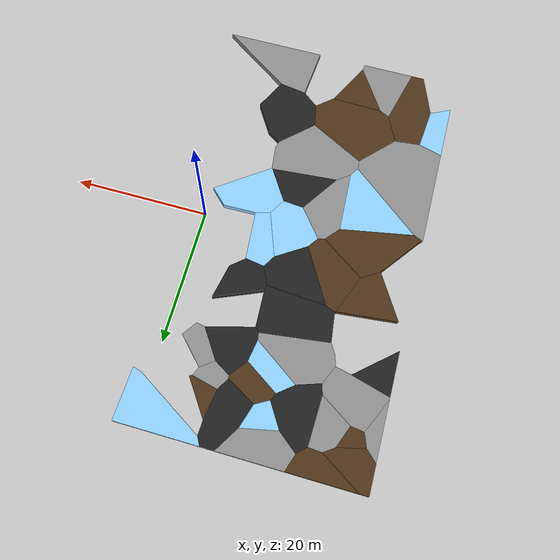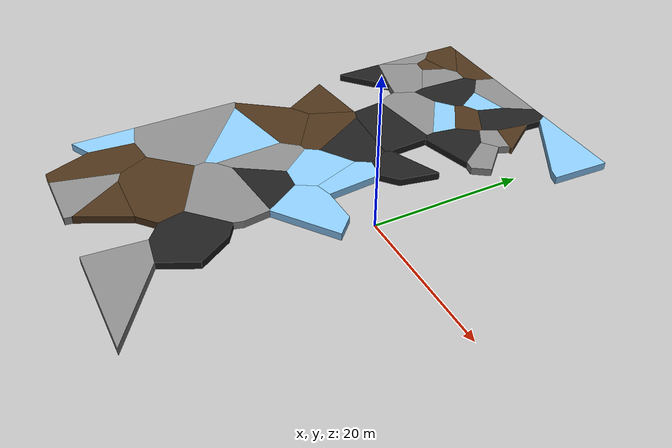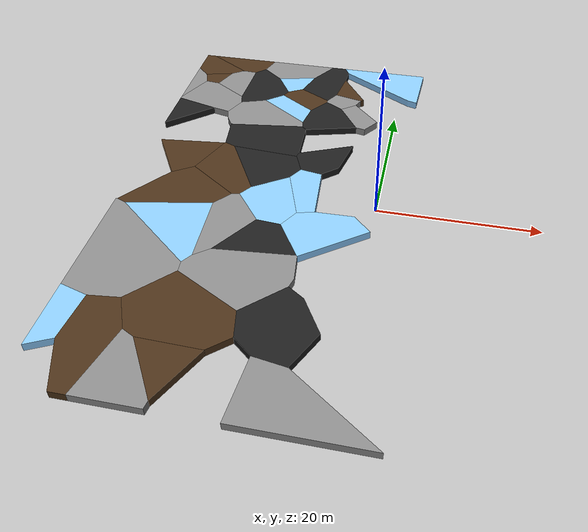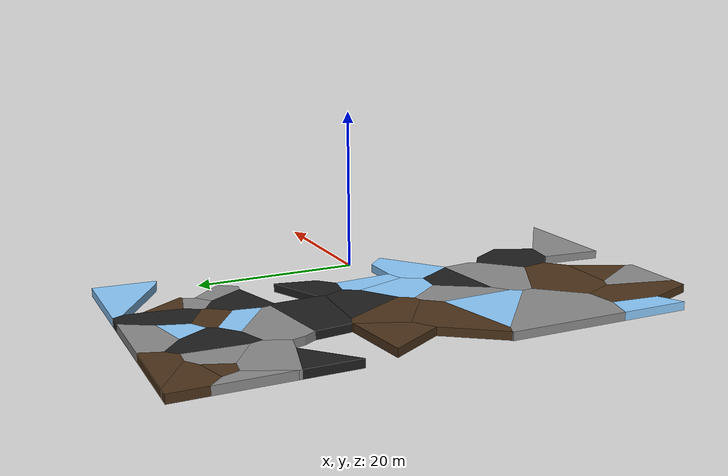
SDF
<sdf version="1.5">
 <world name="voronoi_example">
  <physics name="ode_physics" default="0" type="ode">
   <gravity>0 0 -9.8066</gravity>
   <ode>
    <solver><type>quick</type><iters>50</iters><sor>1.3</sor></solver>
    <constraints>
     <cfm>10e-5</cfm>
     <erp>0.2</erp>
     <contact_max_correcting_vel>100</contact_max_correcting_vel>
     <contact_surface_layer>0.001</contact_surface_layer>
    </constraints>
   </ode>
   <max_step_size>0.004</max_step_size>
   <real_time_factor>1</real_time_factor>
   <real_time_update_rate>250</real_time_update_rate>
  </physics>
  <scene><ambient>0.4 0.4 0.4 1</ambient><background>0.7 0.7 0.7 1</background><shadows>false</shadows></scene>
  <light name="sun" type="directional">
   <pose>0 0 1000 0.4 0.2 0</pose>
   <diffuse>1 1 1 1</diffuse>
   <specular>0.6 0.6 0.6 1</specular>
   <direction>0.1 0.1 -0.9</direction>
  </light>
  <model name="voronoi_example_zone_0">
   <static>true</static>
   <pose>0 0 -0.500 0 0 0</pose>
   <link name="link">
    <collision name="col">
     <geometry>
      <mesh><uri>model://worlds_library/voronoi_example/meshes/voronoi_example_zone_0.stl</uri></mesh>
     </geometry>
     <surface>
      <friction>
       <ode><mu>0.8</mu><mu2>0.3</mu2><fdir1>1 0 0</fdir1><slip1>0.0</slip1><slip2>0.0</slip2></ode>
       <torsional>
        <coefficient>0.03</coefficient>
        <use_patch_radius>false</use_patch_radius>
        <surface_radius>0.12</surface_radius>
        <ode><slip>0.0</slip></ode>
       </torsional>
      </friction>
      <bounce><restitution_coefficient>0.0</restitution_coefficient><threshold>0.1</threshold></bounce>
      <contact>
       <ode><kp>10000000000.0</kp><kd>10000000.0</kd><max_vel>0.01</max_vel><min_depth>0.0</min_depth></ode>
      </contact>
     </surface>
    </collision>
    <visual name="visual">
     <geometry>
      <mesh><uri>model://worlds_library/voronoi_example/meshes/voronoi_example_zone_0.stl</uri></mesh>
     </geometry>
     <material>
      <diffuse>0.55 0.55 0.55 1</diffuse>
      <ambient>0 0 0 0</ambient>
      <specular>0 0 0 1</specular>
      <emissive>0 0 0 1</emissive>
     </material>
    </visual>
   </link>
  </model>
  <model name="voronoi_example_zone_1">
   <static>true</static>
   <pose>0 0 -0.500 0 0 0</pose>
   <link name="link">
    <collision name="col">
     <geometry>
      <mesh><uri>model://worlds_library/voronoi_example/meshes/voronoi_example_zone_1.stl</uri></mesh>
     </geometry>
     <surface>
      <friction>
       <ode><mu>0.4</mu><mu2>0.15</mu2><fdir1>1 0 0</fdir1><slip1>0.0</slip1><slip2>0.0</slip2></ode>
       <torsional>
        <coefficient>0.03</coefficient>
        <use_patch_radius>false</use_patch_radius>
        <surface_radius>0.12</surface_radius>
        <ode><slip>0.0</slip></ode>
       </torsional>
      </friction>
      <bounce><restitution_coefficient>0.0</restitution_coefficient><threshold>0.1</threshold></bounce>
      <contact>
       <ode><kp>1000000000.0</kp><kd>1000000.0</kd><max_vel>0.01</max_vel><min_depth>0.0</min_depth></ode>
      </contact>
     </surface>
    </collision>
    <visual name="visual">
     <geometry>
      <mesh><uri>model://worlds_library/voronoi_example/meshes/voronoi_example_zone_1.stl</uri></mesh>
     </geometry>
     <material>
      <diffuse>0.12 0.12 0.12 1</diffuse>
      <ambient>0 0 0 0</ambient>
      <specular>0 0 0 1</specular>
      <emissive>0 0 0 1</emissive>
     </material>
    </visual>
   </link>
  </model>
  <model name="voronoi_example_zone_2">
   <static>true</static>
   <pose>0 0 -0.500 0 0 0</pose>
   <link name="link">
    <collision name="col">
     <geometry>
      <mesh><uri>model://worlds_library/voronoi_example/meshes/voronoi_example_zone_2.stl</uri></mesh>
     </geometry>
     <surface>
      <friction>
       <ode><mu>0.8</mu><mu2>0.3</mu2><fdir1>1 0 0</fdir1><slip1>0.0</slip1><slip2>0.0</slip2></ode>
       <torsional>
        <coefficient>0.03</coefficient>
        <use_patch_radius>false</use_patch_radius>
        <surface_radius>0.12</surface_radius>
        <ode><slip>0.0</slip></ode>
       </torsional>
      </friction>
      <bounce><restitution_coefficient>0.0</restitution_coefficient><threshold>0.1</threshold></bounce>
      <contact>
       <ode><kp>10000000000.0</kp><kd>10000000.0</kd><max_vel>0.01</max_vel><min_depth>0.0</min_depth></ode>
      </contact>
     </surface>
    </collision>
    <visual name="visual">
     <geometry>
      <mesh><uri>model://worlds_library/voronoi_example/meshes/voronoi_example_zone_2.stl</uri></mesh>
     </geometry>
     <material>
      <diffuse>0.55 0.55 0.55 1</diffuse>
      <ambient>0 0 0 0</ambient>
      <specular>0 0 0 1</specular>
      <emissive>0 0 0 1</emissive>
     </material>
    </visual>
   </link>
  </model>
  <model name="voronoi_example_zone_3">
   <static>true</static>
   <pose>0 0 -0.500 0 0 0</pose>
   <link name="link">
    <collision name="col">
     <geometry>
      <mesh><uri>model://worlds_library/voronoi_example/meshes/voronoi_example_zone_3.stl</uri></mesh>
     </geometry>
     <surface>
      <friction>
       <ode><mu>0.03</mu><mu2>0.02</mu2><fdir1>1 0 0</fdir1><slip1>0.03</slip1><slip2>0.03</slip2></ode>
       <torsional>
        <coefficient>0.005</coefficient>
        <use_patch_radius>false</use_patch_radius>
        <surface_radius>0.12</surface_radius>
        <ode><slip>0.01</slip></ode>
       </torsional>
      </friction>
      <bounce><restitution_coefficient>0.0</restitution_coefficient><threshold>0.1</threshold></bounce>
      <contact>
       <ode><kp>10000000.0</kp><kd>1000.0</kd><max_vel>0.01</max_vel><min_depth>0.0</min_depth></ode>
      </contact>
     </surface>
    </collision>
    <visual name="visual">
     <geometry>
      <mesh><uri>model://worlds_library/voronoi_example/meshes/voronoi_example_zone_3.stl</uri></mesh>
     </geometry>
     <material>
      <diffuse>0.55 0.80 1.00 1</diffuse>
      <ambient>0 0 0 0</ambient>
      <specular>0 0 0 1</specular>
      <emissive>0 0 0 1</emissive>
     </material>
    </visual>
   </link>
  </model>
  <model name="voronoi_example_zone_4">
   <static>true</static>
   <pose>0 0 -0.500 0 0 0</pose>
   <link name="link">
    <collision name="col">
     <geometry>
      <mesh><uri>model://worlds_library/voronoi_example/meshes/voronoi_example_zone_4.stl</uri></mesh>
     </geometry>
     <surface>
      <friction>
       <ode><mu>0.8</mu><mu2>0.3</mu2><fdir1>1 0 0</fdir1><slip1>0.0</slip1><slip2>0.0</slip2></ode>
       <torsional>
        <coefficient>0.03</coefficient>
        <use_patch_radius>false</use_patch_radius>
        <surface_radius>0.12</surface_radius>
        <ode><slip>0.0</slip></ode>
       </torsional>
      </friction>
      <bounce><restitution_coefficient>0.0</restitution_coefficient><threshold>0.1</threshold></bounce>
      <contact>
       <ode><kp>10000000000.0</kp><kd>10000000.0</kd><max_vel>0.01</max_vel><min_depth>0.0</min_depth></ode>
      </contact>
     </surface>
    </collision>
    <visual name="visual">
     <geometry>
      <mesh><uri>model://worlds_library/voronoi_example/meshes/voronoi_example_zone_4.stl</uri></mesh>
     </geometry>
     <material>
      <diffuse>0.55 0.55 0.55 1</diffuse>
      <ambient>0 0 0 0</ambient>
      <specular>0 0 0 1</specular>
      <emissive>0 0 0 1</emissive>
     </material>
    </visual>
   </link>
  </model>
  <model name="voronoi_example_zone_10">
   <static>true</static>
   <pose>0 0 -0.500 0 0 0</pose>
   <link name="link">
    <collision name="col">
     <geometry>
      <mesh><uri>model://worlds_library/voronoi_example/meshes/voronoi_example_zone_10.stl</uri></mesh>
     </geometry>
     <surface>
      <friction>
       <ode><mu>0.6</mu><mu2>0.4</mu2><fdir1>1 0 0</fdir1><slip1>0.08</slip1><slip2>0.08</slip2></ode>
       <torsional>
        <coefficient>0.03</coefficient>
        <use_patch_radius>false</use_patch_radius>
        <surface_radius>0.12</surface_radius>
        <ode><slip>0.0</slip></ode>
       </torsional>
      </friction>
      <bounce><restitution_coefficient>0.0</restitution_coefficient><threshold>0.1</threshold></bounce>
      <contact>
       <ode><kp>1000000.0</kp><kd>10000.0</kd><max_vel>0.01</max_vel><min_depth>0.0</min_depth></ode>
      </contact>
     </surface>
    </collision>
    <visual name="visual">
     <geometry>
      <mesh><uri>model://worlds_library/voronoi_example/meshes/voronoi_example_zone_10.stl</uri></mesh>
     </geometry>
     <material>
      <diffuse>0.30 0.20 0.10 1</diffuse>
      <ambient>0 0 0 0</ambient>
      <specular>0 0 0 1</specular>
      <emissive>0 0 0 1</emissive>
     </material>
    </visual>
   </link>
  </model>
  <model name="voronoi_example_zone_11">
   <static>true</static>
   <pose>0 0 -0.500 0 0 0</pose>
   <link name="link">
    <collision name="col">
     <geometry>
      <mesh><uri>model://worlds_library/voronoi_example/meshes/voronoi_example_zone_11.stl</uri></mesh>
     </geometry>
     <surface>
      <friction>
       <ode><mu>0.6</mu><mu2>0.4</mu2><fdir1>1 0 0</fdir1><slip1>0.08</slip1><slip2>0.08</slip2></ode>
       <torsional>
        <coefficient>0.03</coefficient>
        <use_patch_radius>false</use_patch_radius>
        <surface_radius>0.12</surface_radius>
        <ode><slip>0.0</slip></ode>
       </torsional>
      </friction>
      <bounce><restitution_coefficient>0.0</restitution_coefficient><threshold>0.1</threshold></bounce>
      <contact>
       <ode><kp>1000000.0</kp><kd>10000.0</kd><max_vel>0.01</max_vel><min_depth>0.0</min_depth></ode>
      </contact>
     </surface>
    </collision>
    <visual name="visual">
     <geometry>
      <mesh><uri>model://worlds_library/voronoi_example/meshes/voronoi_example_zone_11.stl</uri></mesh>
     </geometry>
     <material>
      <diffuse>0.30 0.20 0.10 1</diffuse>
      <ambient>0 0 0 0</ambient>
      <specular>0 0 0 1</specular>
      <emissive>0 0 0 1</emissive>
     </material>
    </visual>
   </link>
  </model>
  <model name="voronoi_example_zone_12">
   <static>true</static>
   <pose>0 0 -0.500 0 0 0</pose>
   <link name="link">
    <collision name="col">
     <geometry>
      <mesh><uri>model://worlds_library/voronoi_example/meshes/voronoi_example_zone_12.stl</uri></mesh>
     </geometry>
     <surface>
      <friction>
       <ode><mu>0.6</mu><mu2>0.4</mu2><fdir1>1 0 0</fdir1><slip1>0.08</slip1><slip2>0.08</slip2></ode>
       <torsional>
        <coefficient>0.03</coefficient>
        <use_patch_radius>false</use_patch_radius>
        <surface_radius>0.12</surface_radius>
        <ode><slip>0.0</slip></ode>
       </torsional>
      </friction>
      <bounce><restitution_coefficient>0.0</restitution_coefficient><threshold>0.1</threshold></bounce>
      <contact>
       <ode><kp>1000000.0</kp><kd>10000.0</kd><max_vel>0.01</max_vel><min_depth>0.0</min_depth></ode>
      </contact>
     </surface>
    </collision>
    <visual name="visual">
     <geometry>
      <mesh><uri>model://worlds_library/voronoi_example/meshes/voronoi_example_zone_12.stl</uri></mesh>
     </geometry>
     <material>
      <diffuse>0.30 0.20 0.10 1</diffuse>
      <ambient>0 0 0 0</ambient>
      <specular>0 0 0 1</specular>
      <emissive>0 0 0 1</emissive>
     </material>
    </visual>
   </link>
  </model>
  <model name="voronoi_example_zone_13">
   <static>true</static>
   <pose>0 0 -0.500 0 0 0</pose>
   <link name="link">
    <collision name="col">
     <geometry>
      <mesh><uri>model://worlds_library/voronoi_example/meshes/voronoi_example_zone_13.stl</uri></mesh>
     </geometry>
     <surface>
      <friction>
       <ode><mu>0.4</mu><mu2>0.15</mu2><fdir1>1 0 0</fdir1><slip1>0.0</slip1><slip2>0.0</slip2></ode>
       <torsional>
        <coefficient>0.03</coefficient>
        <use_patch_radius>false</use_patch_radius>
        <surface_radius>0.12</surface_radius>
        <ode><slip>0.0</slip></ode>
       </torsional>
      </friction>
      <bounce><restitution_coefficient>0.0</restitution_coefficient><threshold>0.1</threshold></bounce>
      <contact>
       <ode><kp>1000000000.0</kp><kd>1000000.0</kd><max_vel>0.01</max_vel><min_depth>0.0</min_depth></ode>
      </contact>
     </surface>
    </collision>
    <visual name="visual">
     <geometry>
      <mesh><uri>model://worlds_library/voronoi_example/meshes/voronoi_example_zone_13.stl</uri></mesh>
     </geometry>
     <material>
      <diffuse>0.12 0.12 0.12 1</diffuse>
      <ambient>0 0 0 0</ambient>
      <specular>0 0 0 1</specular>
      <emissive>0 0 0 1</emissive>
     </material>
    </visual>
   </link>
  </model>
  <model name="voronoi_example_zone_14">
   <static>true</static>
   <pose>0 0 -0.500 0 0 0</pose>
   <link name="link">
    <collision name="col">
     <geometry>
      <mesh><uri>model://worlds_library/voronoi_example/meshes/voronoi_example_zone_14.stl</uri></mesh>
     </geometry>
     <surface>
      <friction>
       <ode><mu>0.6</mu><mu2>0.4</mu2><fdir1>1 0 0</fdir1><slip1>0.08</slip1><slip2>0.08</slip2></ode>
       <torsional>
        <coefficient>0.03</coefficient>
        <use_patch_radius>false</use_patch_radius>
        <surface_radius>0.12</surface_radius>
        <ode><slip>0.0</slip></ode>
       </torsional>
      </friction>
      <bounce><restitution_coefficient>0.0</restitution_coefficient><threshold>0.1</threshold></bounce>
      <contact>
       <ode><kp>1000000.0</kp><kd>10000.0</kd><max_vel>0.01</max_vel><min_depth>0.0</min_depth></ode>
      </contact>
     </surface>
    </collision>
    <visual name="visual">
     <geometry>
      <mesh><uri>model://worlds_library/voronoi_example/meshes/voronoi_example_zone_14.stl</uri></mesh>
     </geometry>
     <material>
      <diffuse>0.30 0.20 0.10 1</diffuse>
      <ambient>0 0 0 0</ambient>
      <specular>0 0 0 1</specular>
      <emissive>0 0 0 1</emissive>
     </material>
    </visual>
   </link>
  </model>
  <model name="voronoi_example_zone_15">
   <static>true</static>
   <pose>0 0 -0.500 0 0 0</pose>
   <link name="link">
    <collision name="col">
     <geometry>
      <mesh><uri>model://worlds_library/voronoi_example/meshes/voronoi_example_zone_15.stl</uri></mesh>
     </geometry>
     <surface>
      <friction>
       <ode><mu>0.8</mu><mu2>0.3</mu2><fdir1>1 0 0</fdir1><slip1>0.0</slip1><slip2>0.0</slip2></ode>
       <torsional>
        <coefficient>0.03</coefficient>
        <use_patch_radius>false</use_patch_radius>
        <surface_radius>0.12</surface_radius>
        <ode><slip>0.0</slip></ode>
       </torsional>
      </friction>
      <bounce><restitution_coefficient>0.0</restitution_coefficient><threshold>0.1</threshold></bounce>
      <contact>
       <ode><kp>10000000000.0</kp><kd>10000000.0</kd><max_vel>0.01</max_vel><min_depth>0.0</min_depth></ode>
      </contact>
     </surface>
    </collision>
    <visual name="visual">
     <geometry>
      <mesh><uri>model://worlds_library/voronoi_example/meshes/voronoi_example_zone_15.stl</uri></mesh>
     </geometry>
     <material>
      <diffuse>0.55 0.55 0.55 1</diffuse>
      <ambient>0 0 0 0</ambient>
      <specular>0 0 0 1</specular>
      <emissive>0 0 0 1</emissive>
     </material>
    </visual>
   </link>
  </model>
  <model name="voronoi_example_zone_16">
   <static>true</static>
   <pose>0 0 -0.500 0 0 0</pose>
   <link name="link">
    <collision name="col">
     <geometry>
      <mesh><uri>model://worlds_library/voronoi_example/meshes/voronoi_example_zone_16.stl</uri></mesh>
     </geometry>
     <surface>
      <friction>
       <ode><mu>0.6</mu><mu2>0.4</mu2><fdir1>1 0 0</fdir1><slip1>0.08</slip1><slip2>0.08</slip2></ode>
       <torsional>
        <coefficient>0.03</coefficient>
        <use_patch_radius>false</use_patch_radius>
        <surface_radius>0.12</surface_radius>
        <ode><slip>0.0</slip></ode>
       </torsional>
      </friction>
      <bounce><restitution_coefficient>0.0</restitution_coefficient><threshold>0.1</threshold></bounce>
      <contact>
       <ode><kp>1000000.0</kp><kd>10000.0</kd><max_vel>0.01</max_vel><min_depth>0.0</min_depth></ode>
      </contact>
     </surface>
    </collision>
    <visual name="visual">
     <geometry>
      <mesh><uri>model://worlds_library/voronoi_example/meshes/voronoi_example_zone_16.stl</uri></mesh>
     </geometry>
     <material>
      <diffuse>0.30 0.20 0.10 1</diffuse>
      <ambient>0 0 0 0</ambient>
      <specular>0 0 0 1</specular>
      <emissive>0 0 0 1</emissive>
     </material>
    </visual>
   </link>
  </model>
  <model name="voronoi_example_zone_17">
   <static>true</static>
   <pose>0 0 -0.500 0 0 0</pose>
   <link name="link">
    <collision name="col">
     <geometry>
      <mesh><uri>model://worlds_library/voronoi_example/meshes/voronoi_example_zone_17.stl</uri></mesh>
     </geometry>
     <surface>
      <friction>
       <ode><mu>0.6</mu><mu2>0.4</mu2><fdir1>1 0 0</fdir1><slip1>0.08</slip1><slip2>0.08</slip2></ode>
       <torsional>
        <coefficient>0.03</coefficient>
        <use_patch_radius>false</use_patch_radius>
        <surface_radius>0.12</surface_radius>
        <ode><slip>0.0</slip></ode>
       </torsional>
      </friction>
      <bounce><restitution_coefficient>0.0</restitution_coefficient><threshold>0.1</threshold></bounce>
      <contact>
       <ode><kp>1000000.0</kp><kd>10000.0</kd><max_vel>0.01</max_vel><min_depth>0.0</min_depth></ode>
      </contact>
     </surface>
    </collision>
    <visual name="visual">
     <geometry>
      <mesh><uri>model://worlds_library/voronoi_example/meshes/voronoi_example_zone_17.stl</uri></mesh>
     </geometry>
     <material>
      <diffuse>0.30 0.20 0.10 1</diffuse>
      <ambient>0 0 0 0</ambient>
      <specular>0 0 0 1</specular>
      <emissive>0 0 0 1</emissive>
     </material>
    </visual>
   </link>
  </model>
  <model name="voronoi_example_zone_18">
   <static>true</static>
   <pose>0 0 -0.500 0 0 0</pose>
   <link name="link">
    <collision name="col">
     <geometry>
      <mesh><uri>model://worlds_library/voronoi_example/meshes/voronoi_example_zone_18.stl</uri></mesh>
     </geometry>
     <surface>
      <friction>
       <ode><mu>0.6</mu><mu2>0.4</mu2><fdir1>1 0 0</fdir1><slip1>0.08</slip1><slip2>0.08</slip2></ode>
       <torsional>
        <coefficient>0.03</coefficient>
        <use_patch_radius>false</use_patch_radius>
        <surface_radius>0.12</surface_radius>
        <ode><slip>0.0</slip></ode>
       </torsional>
      </friction>
      <bounce><restitution_coefficient>0.0</restitution_coefficient><threshold>0.1</threshold></bounce>
      <contact>
       <ode><kp>1000000.0</kp><kd>10000.0</kd><max_vel>0.01</max_vel><min_depth>0.0</min_depth></ode>
      </contact>
     </surface>
    </collision>
    <visual name="visual">
     <geometry>
      <mesh><uri>model://worlds_library/voronoi_example/meshes/voronoi_example_zone_18.stl</uri></mesh>
     </geometry>
     <material>
      <diffuse>0.30 0.20 0.10 1</diffuse>
      <ambient>0 0 0 0</ambient>
      <specular>0 0 0 1</specular>
      <emissive>0 0 0 1</emissive>
     </material>
    </visual>
   </link>
  </model>
  <model name="voronoi_example_zone_19">
   <static>true</static>
   <pose>0 0 -0.500 0 0 0</pose>
   <link name="link">
    <collision name="col">
     <geometry>
      <mesh><uri>model://worlds_library/voronoi_example/meshes/voronoi_example_zone_19.stl</uri></mesh>
     </geometry>
     <surface>
      <friction>
       <ode><mu>0.8</mu><mu2>0.3</mu2><fdir1>1 0 0</fdir1><slip1>0.0</slip1><slip2>0.0</slip2></ode>
       <torsional>
        <coefficient>0.03</coefficient>
        <use_patch_radius>false</use_patch_radius>
        <surface_radius>0.12</surface_radius>
        <ode><slip>0.0</slip></ode>
       </torsional>
      </friction>
      <bounce><restitution_coefficient>0.0</restitution_coefficient><threshold>0.1</threshold></bounce>
      <contact>
       <ode><kp>10000000000.0</kp><kd>10000000.0</kd><max_vel>0.01</max_vel><min_depth>0.0</min_depth></ode>
      </contact>
     </surface>
    </collision>
    <visual name="visual">
     <geometry>
      <mesh><uri>model://worlds_library/voronoi_example/meshes/voronoi_example_zone_19.stl</uri></mesh>
     </geometry>
     <material>
      <diffuse>0.55 0.55 0.55 1</diffuse>
      <ambient>0 0 0 0</ambient>
      <specular>0 0 0 1</specular>
      <emissive>0 0 0 1</emissive>
     </material>
    </visual>
   </link>
  </model>
  <model name="voronoi_example_zone_20">
   <static>true</static>
   <pose>0 0 -0.500 0 0 0</pose>
   <link name="link">
    <collision name="col">
     <geometry>
      <mesh><uri>model://worlds_library/voronoi_example/meshes/voronoi_example_zone_20.stl</uri></mesh>
     </geometry>
     <surface>
      <friction>
       <ode><mu>0.8</mu><mu2>0.3</mu2><fdir1>1 0 0</fdir1><slip1>0.0</slip1><slip2>0.0</slip2></ode>
       <torsional>
        <coefficient>0.03</coefficient>
        <use_patch_radius>false</use_patch_radius>
        <surface_radius>0.12</surface_radius>
        <ode><slip>0.0</slip></ode>
       </torsional>
      </friction>
      <bounce><restitution_coefficient>0.0</restitution_coefficient><threshold>0.1</threshold></bounce>
      <contact>
       <ode><kp>10000000000.0</kp><kd>10000000.0</kd><max_vel>0.01</max_vel><min_depth>0.0</min_depth></ode>
      </contact>
     </surface>
    </collision>
    <visual name="visual">
     <geometry>
      <mesh><uri>model://worlds_library/voronoi_example/meshes/voronoi_example_zone_20.stl</uri></mesh>
     </geometry>
     <material>
      <diffuse>0.55 0.55 0.55 1</diffuse>
      <ambient>0 0 0 0</ambient>
      <specular>0 0 0 1</specular>
      <emissive>0 0 0 1</emissive>
     </material>
    </visual>
   </link>
  </model>
  <model name="voronoi_example_zone_21">
   <static>true</static>
   <pose>0 0 -0.500 0 0 0</pose>
   <link name="link">
    <collision name="col">
     <geometry>
      <mesh><uri>model://worlds_library/voronoi_example/meshes/voronoi_example_zone_21.stl</uri></mesh>
     </geometry>
     <surface>
      <friction>
       <ode><mu>0.8</mu><mu2>0.3</mu2><fdir1>1 0 0</fdir1><slip1>0.0</slip1><slip2>0.0</slip2></ode>
       <torsional>
        <coefficient>0.03</coefficient>
        <use_patch_radius>false</use_patch_radius>
        <surface_radius>0.12</surface_radius>
        <ode><slip>0.0</slip></ode>
       </torsional>
      </friction>
      <bounce><restitution_coefficient>0.0</restitution_coefficient><threshold>0.1</threshold></bounce>
      <contact>
       <ode><kp>10000000000.0</kp><kd>10000000.0</kd><max_vel>0.01</max_vel><min_depth>0.0</min_depth></ode>
      </contact>
     </surface>
    </collision>
    <visual name="visual">
     <geometry>
      <mesh><uri>model://worlds_library/voronoi_example/meshes/voronoi_example_zone_21.stl</uri></mesh>
     </geometry>
     <material>
      <diffuse>0.55 0.55 0.55 1</diffuse>
      <ambient>0 0 0 0</ambient>
      <specular>0 0 0 1</specular>
      <emissive>0 0 0 1</emissive>
     </material>
    </visual>
   </link>
  </model>
  <model name="voronoi_example_zone_22">
   <static>true</static>
   <pose>0 0 -0.500 0 0 0</pose>
   <link name="link">
    <collision name="col">
     <geometry>
      <mesh><uri>model://worlds_library/voronoi_example/meshes/voronoi_example_zone_22.stl</uri></mesh>
     </geometry>
     <surface>
      <friction>
       <ode><mu>0.03</mu><mu2>0.02</mu2><fdir1>1 0 0</fdir1><slip1>0.03</slip1><slip2>0.03</slip2></ode>
       <torsional>
        <coefficient>0.005</coefficient>
        <use_patch_radius>false</use_patch_radius>
        <surface_radius>0.12</surface_radius>
        <ode><slip>0.01</slip></ode>
       </torsional>
      </friction>
      <bounce><restitution_coefficient>0.0</restitution_coefficient><threshold>0.1</threshold></bounce>
      <contact>
       <ode><kp>10000000.0</kp><kd>1000.0</kd><max_vel>0.01</max_vel><min_depth>0.0</min_depth></ode>
      </contact>
     </surface>
    </collision>
    <visual name="visual">
     <geometry>
      <mesh><uri>model://worlds_library/voronoi_example/meshes/voronoi_example_zone_22.stl</uri></mesh>
     </geometry>
     <material>
      <diffuse>0.55 0.80 1.00 1</diffuse>
      <ambient>0 0 0 0</ambient>
      <specular>0 0 0 1</specular>
      <emissive>0 0 0 1</emissive>
     </material>
    </visual>
   </link>
  </model>
  <model name="voronoi_example_zone_23">
   <static>true</static>
   <pose>0 0 -0.500 0 0 0</pose>
   <link name="link">
    <collision name="col">
     <geometry>
      <mesh><uri>model://worlds_library/voronoi_example/meshes/voronoi_example_zone_23.stl</uri></mesh>
     </geometry>
     <surface>
      <friction>
       <ode><mu>0.8</mu><mu2>0.3</mu2><fdir1>1 0 0</fdir1><slip1>0.0</slip1><slip2>0.0</slip2></ode>
       <torsional>
        <coefficient>0.03</coefficient>
        <use_patch_radius>false</use_patch_radius>
        <surface_radius>0.12</surface_radius>
        <ode><slip>0.0</slip></ode>
       </torsional>
      </friction>
      <bounce><restitution_coefficient>0.0</restitution_coefficient><threshold>0.1</threshold></bounce>
      <contact>
       <ode><kp>10000000000.0</kp><kd>10000000.0</kd><max_vel>0.01</max_vel><min_depth>0.0</min_depth></ode>
      </contact>
     </surface>
    </collision>
    <visual name="visual">
     <geometry>
      <mesh><uri>model://worlds_library/voronoi_example/meshes/voronoi_example_zone_23.stl</uri></mesh>
     </geometry>
     <material>
      <diffuse>0.55 0.55 0.55 1</diffuse>
      <ambient>0 0 0 0</ambient>
      <specular>0 0 0 1</specular>
      <emissive>0 0 0 1</emissive>
     </material>
    </visual>
   </link>
  </model>
  <model name="voronoi_example_zone_24">
   <static>true</static>
   <pose>0 0 -0.500 0 0 0</pose>
   <link name="link">
    <collision name="col">
     <geometry>
      <mesh><uri>model://worlds_library/voronoi_example/meshes/voronoi_example_zone_24.stl</uri></mesh>
     </geometry>
     <surface>
      <friction>
       <ode><mu>0.6</mu><mu2>0.4</mu2><fdir1>1 0 0</fdir1><slip1>0.08</slip1><slip2>0.08</slip2></ode>
       <torsional>
        <coefficient>0.03</coefficient>
        <use_patch_radius>false</use_patch_radius>
        <surface_radius>0.12</surface_radius>
        <ode><slip>0.0</slip></ode>
       </torsional>
      </friction>
      <bounce><restitution_coefficient>0.0</restitution_coefficient><threshold>0.1</threshold></bounce>
      <contact>
       <ode><kp>1000000.0</kp><kd>10000.0</kd><max_vel>0.01</max_vel><min_depth>0.0</min_depth></ode>
      </contact>
     </surface>
    </collision>
    <visual name="visual">
     <geometry>
      <mesh><uri>model://worlds_library/voronoi_example/meshes/voronoi_example_zone_24.stl</uri></mesh>
     </geometry>
     <material>
      <diffuse>0.30 0.20 0.10 1</diffuse>
      <ambient>0 0 0 0</ambient>
      <specular>0 0 0 1</specular>
      <emissive>0 0 0 1</emissive>
     </material>
    </visual>
   </link>
  </model>
  <model name="voronoi_example_zone_25">
   <static>true</static>
   <pose>0 0 -0.500 0 0 0</pose>
   <link name="link">
    <collision name="col">
     <geometry>
      <mesh><uri>model://worlds_library/voronoi_example/meshes/voronoi_example_zone_25.stl</uri></mesh>
     </geometry>
     <surface>
      <friction>
       <ode><mu>0.8</mu><mu2>0.3</mu2><fdir1>1 0 0</fdir1><slip1>0.0</slip1><slip2>0.0</slip2></ode>
       <torsional>
        <coefficient>0.03</coefficient>
        <use_patch_radius>false</use_patch_radius>
        <surface_radius>0.12</surface_radius>
        <ode><slip>0.0</slip></ode>
       </torsional>
      </friction>
      <bounce><restitution_coefficient>0.0</restitution_coefficient><threshold>0.1</threshold></bounce>
      <contact>
       <ode><kp>10000000000.0</kp><kd>10000000.0</kd><max_vel>0.01</max_vel><min_depth>0.0</min_depth></ode>
      </contact>
     </surface>
    </collision>
    <visual name="visual">
     <geometry>
      <mesh><uri>model://worlds_library/voronoi_example/meshes/voronoi_example_zone_25.stl</uri></mesh>
     </geometry>
     <material>
      <diffuse>0.55 0.55 0.55 1</diffuse>
      <ambient>0 0 0 0</ambient>
      <specular>0 0 0 1</specular>
      <emissive>0 0 0 1</emissive>
     </material>
    </visual>
   </link>
  </model>
  <model name="voronoi_example_zone_26">
   <static>true</static>
   <pose>0 0 -0.500 0 0 0</pose>
   <link name="link">
    <collision name="col">
     <geometry>
      <mesh><uri>model://worlds_library/voronoi_example/meshes/voronoi_example_zone_26.stl</uri></mesh>
     </geometry>
     <surface>
      <friction>
       <ode><mu>0.8</mu><mu2>0.3</mu2><fdir1>1 0 0</fdir1><slip1>0.0</slip1><slip2>0.0</slip2></ode>
       <torsional>
        <coefficient>0.03</coefficient>
        <use_patch_radius>false</use_patch_radius>
        <surface_radius>0.12</surface_radius>
        <ode><slip>0.0</slip></ode>
       </torsional>
      </friction>
      <bounce><restitution_coefficient>0.0</restitution_coefficient><threshold>0.1</threshold></bounce>
      <contact>
       <ode><kp>10000000000.0</kp><kd>10000000.0</kd><max_vel>0.01</max_vel><min_depth>0.0</min_depth></ode>
      </contact>
     </surface>
    </collision>
    <visual name="visual">
     <geometry>
      <mesh><uri>model://worlds_library/voronoi_example/meshes/voronoi_example_zone_26.stl</uri></mesh>
     </geometry>
     <material>
      <diffuse>0.55 0.55 0.55 1</diffuse>
      <ambient>0 0 0 0</ambient>
      <specular>0 0 0 1</specular>
      <emissive>0 0 0 1</emissive>
     </material>
    </visual>
   </link>
  </model>
  <model name="voronoi_example_zone_27">
   <static>true</static>
   <pose>0 0 -0.500 0 0 0</pose>
   <link name="link">
    <collision name="col">
     <geometry>
      <mesh><uri>model://worlds_library/voronoi_example/meshes/voronoi_example_zone_27.stl</uri></mesh>
     </geometry>
     <surface>
      <friction>
       <ode><mu>0.6</mu><mu2>0.4</mu2><fdir1>1 0 0</fdir1><slip1>0.08</slip1><slip2>0.08</slip2></ode>
       <torsional>
        <coefficient>0.03</coefficient>
        <use_patch_radius>false</use_patch_radius>
        <surface_radius>0.12</surface_radius>
        <ode><slip>0.0</slip></ode>
       </torsional>
      </friction>
      <bounce><restitution_coefficient>0.0</restitution_coefficient><threshold>0.1</threshold></bounce>
      <contact>
       <ode><kp>1000000.0</kp><kd>10000.0</kd><max_vel>0.01</max_vel><min_depth>0.0</min_depth></ode>
      </contact>
     </surface>
    </collision>
    <visual name="visual">
     <geometry>
      <mesh><uri>model://worlds_library/voronoi_example/meshes/voronoi_example_zone_27.stl</uri></mesh>
     </geometry>
     <material>
      <diffuse>0.30 0.20 0.10 1</diffuse>
      <ambient>0 0 0 0</ambient>
      <specular>0 0 0 1</specular>
      <emissive>0 0 0 1</emissive>
     </material>
    </visual>
   </link>
  </model>
  <model name="voronoi_example_zone_28">
   <static>true</static>
   <pose>0 0 -0.500 0 0 0</pose>
   <link name="link">
    <collision name="col">
     <geometry>
      <mesh><uri>model://worlds_library/voronoi_example/meshes/voronoi_example_zone_28.stl</uri></mesh>
     </geometry>
     <surface>
      <friction>
       <ode><mu>0.03</mu><mu2>0.02</mu2><fdir1>1 0 0</fdir1><slip1>0.03</slip1><slip2>0.03</slip2></ode>
       <torsional>
        <coefficient>0.005</coefficient>
        <use_patch_radius>false</use_patch_radius>
        <surface_radius>0.12</surface_radius>
        <ode><slip>0.01</slip></ode>
       </torsional>
      </friction>
      <bounce><restitution_coefficient>0.0</restitution_coefficient><threshold>0.1</threshold></bounce>
      <contact>
       <ode><kp>10000000.0</kp><kd>1000.0</kd><max_vel>0.01</max_vel><min_depth>0.0</min_depth></ode>
      </contact>
     </surface>
    </collision>
    <visual name="visual">
     <geometry>
      <mesh><uri>model://worlds_library/voronoi_example/meshes/voronoi_example_zone_28.stl</uri></mesh>
     </geometry>
     <material>
      <diffuse>0.55 0.80 1.00 1</diffuse>
      <ambient>0 0 0 0</ambient>
      <specular>0 0 0 1</specular>
      <emissive>0 0 0 1</emissive>
     </material>
    </visual>
   </link>
  </model>
  <model name="voronoi_example_zone_29">
   <static>true</static>
   <pose>0 0 -0.500 0 0 0</pose>
   <link name="link">
    <collision name="col">
     <geometry>
      <mesh><uri>model://worlds_library/voronoi_example/meshes/voronoi_example_zone_29.stl</uri></mesh>
     </geometry>
     <surface>
      <friction>
       <ode><mu>0.4</mu><mu2>0.15</mu2><fdir1>1 0 0</fdir1><slip1>0.0</slip1><slip2>0.0</slip2></ode>
       <torsional>
        <coefficient>0.03</coefficient>
        <use_patch_radius>false</use_patch_radius>
        <surface_radius>0.12</surface_radius>
        <ode><slip>0.0</slip></ode>
       </torsional>
      </friction>
      <bounce><restitution_coefficient>0.0</restitution_coefficient><threshold>0.1</threshold></bounce>
      <contact>
       <ode><kp>1000000000.0</kp><kd>1000000.0</kd><max_vel>0.01</max_vel><min_depth>0.0</min_depth></ode>
      </contact>
     </surface>
    </collision>
    <visual name="visual">
     <geometry>
      <mesh><uri>model://worlds_library/voronoi_example/meshes/voronoi_example_zone_29.stl</uri></mesh>
     </geometry>
     <material>
      <diffuse>0.12 0.12 0.12 1</diffuse>
      <ambient>0 0 0 0</ambient>
      <specular>0 0 0 1</specular>
      <emissive>0 0 0 1</emissive>
     </material>
    </visual>
   </link>
  </model>
  <model name="voronoi_example_zone_30">
   <static>true</static>
   <pose>0 0 -0.500 0 0 0</pose>
   <link name="link">
    <collision name="col">
     <geometry>
      <mesh><uri>model://worlds_library/voronoi_example/meshes/voronoi_example_zone_30.stl</uri></mesh>
     </geometry>
     <surface>
      <friction>
       <ode><mu>0.4</mu><mu2>0.15</mu2><fdir1>1 0 0</fdir1><slip1>0.0</slip1><slip2>0.0</slip2></ode>
       <torsional>
        <coefficient>0.03</coefficient>
        <use_patch_radius>false</use_patch_radius>
        <surface_radius>0.12</surface_radius>
        <ode><slip>0.0</slip></ode>
       </torsional>
      </friction>
      <bounce><restitution_coefficient>0.0</restitution_coefficient><threshold>0.1</threshold></bounce>
      <contact>
       <ode><kp>1000000000.0</kp><kd>1000000.0</kd><max_vel>0.01</max_vel><min_depth>0.0</min_depth></ode>
      </contact>
     </surface>
    </collision>
    <visual name="visual">
     <geometry>
      <mesh><uri>model://worlds_library/voronoi_example/meshes/voronoi_example_zone_30.stl</uri></mesh>
     </geometry>
     <material>
      <diffuse>0.12 0.12 0.12 1</diffuse>
      <ambient>0 0 0 0</ambient>
      <specular>0 0 0 1</specular>
      <emissive>0 0 0 1</emissive>
     </material>
    </visual>
   </link>
  </model>
  <model name="voronoi_example_zone_31">
   <static>true</static>
   <pose>0 0 -0.500 0 0 0</pose>
   <link name="link">
    <collision name="col">
     <geometry>
      <mesh><uri>model://worlds_library/voronoi_example/meshes/voronoi_example_zone_31.stl</uri></mesh>
     </geometry>
     <surface>
      <friction>
       <ode><mu>0.03</mu><mu2>0.02</mu2><fdir1>1 0 0</fdir1><slip1>0.03</slip1><slip2>0.03</slip2></ode>
       <torsional>
        <coefficient>0.005</coefficient>
        <use_patch_radius>false</use_patch_radius>
        <surface_radius>0.12</surface_radius>
        <ode><slip>0.01</slip></ode>
       </torsional>
      </friction>
      <bounce><restitution_coefficient>0.0</restitution_coefficient><threshold>0.1</threshold></bounce>
      <contact>
       <ode><kp>10000000.0</kp><kd>1000.0</kd><max_vel>0.01</max_vel><min_depth>0.0</min_depth></ode>
      </contact>
     </surface>
    </collision>
    <visual name="visual">
     <geometry>
      <mesh><uri>model://worlds_library/voronoi_example/meshes/voronoi_example_zone_31.stl</uri></mesh>
     </geometry>
     <material>
      <diffuse>0.55 0.80 1.00 1</diffuse>
      <ambient>0 0 0 0</ambient>
      <specular>0 0 0 1</specular>
      <emissive>0 0 0 1</emissive>
     </material>
    </visual>
   </link>
  </model>
  <model name="voronoi_example_zone_32">
   <static>true</static>
   <pose>0 0 -0.500 0 0 0</pose>
   <link name="link">
    <collision name="col">
     <geometry>
      <mesh><uri>model://worlds_library/voronoi_example/meshes/voronoi_example_zone_32.stl</uri></mesh>
     </geometry>
     <surface>
      <friction>
       <ode><mu>0.4</mu><mu2>0.15</mu2><fdir1>1 0 0</fdir1><slip1>0.0</slip1><slip2>0.0</slip2></ode>
       <torsional>
        <coefficient>0.03</coefficient>
        <use_patch_radius>false</use_patch_radius>
        <surface_radius>0.12</surface_radius>
        <ode><slip>0.0</slip></ode>
       </torsional>
      </friction>
      <bounce><restitution_coefficient>0.0</restitution_coefficient><threshold>0.1</threshold></bounce>
      <contact>
       <ode><kp>1000000000.0</kp><kd>1000000.0</kd><max_vel>0.01</max_vel><min_depth>0.0</min_depth></ode>
      </contact>
     </surface>
    </collision>
    <visual name="visual">
     <geometry>
      <mesh><uri>model://worlds_library/voronoi_example/meshes/voronoi_example_zone_32.stl</uri></mesh>
     </geometry>
     <material>
      <diffuse>0.12 0.12 0.12 1</diffuse>
      <ambient>0 0 0 0</ambient>
      <specular>0 0 0 1</specular>
      <emissive>0 0 0 1</emissive>
     </material>
    </visual>
   </link>
  </model>
  <model name="voronoi_example_zone_33">
   <static>true</static>
   <pose>0 0 -0.500 0 0 0</pose>
   <link name="link">
    <collision name="col">
     <geometry>
      <mesh><uri>model://worlds_library/voronoi_example/meshes/voronoi_example_zone_33.stl</uri></mesh>
     </geometry>
     <surface>
      <friction>
       <ode><mu>0.03</mu><mu2>0.02</mu2><fdir1>1 0 0</fdir1><slip1>0.03</slip1><slip2>0.03</slip2></ode>
       <torsional>
        <coefficient>0.005</coefficient>
        <use_patch_radius>false</use_patch_radius>
        <surface_radius>0.12</surface_radius>
        <ode><slip>0.01</slip></ode>
       </torsional>
      </friction>
      <bounce><restitution_coefficient>0.0</restitution_coefficient><threshold>0.1</threshold></bounce>
      <contact>
       <ode><kp>10000000.0</kp><kd>1000.0</kd><max_vel>0.01</max_vel><min_depth>0.0</min_depth></ode>
      </contact>
     </surface>
    </collision>
    <visual name="visual">
     <geometry>
      <mesh><uri>model://worlds_library/voronoi_example/meshes/voronoi_example_zone_33.stl</uri></mesh>
     </geometry>
     <material>
      <diffuse>0.55 0.80 1.00 1</diffuse>
      <ambient>0 0 0 0</ambient>
      <specular>0 0 0 1</specular>
      <emissive>0 0 0 1</emissive>
     </material>
    </visual>
   </link>
  </model>
  <model name="voronoi_example_zone_34">
   <static>true</static>
   <pose>0 0 -0.500 0 0 0</pose>
   <link name="link">
    <collision name="col">
     <geometry>
      <mesh><uri>model://worlds_library/voronoi_example/meshes/voronoi_example_zone_34.stl</uri></mesh>
     </geometry>
     <surface>
      <friction>
       <ode><mu>0.03</mu><mu2>0.02</mu2><fdir1>1 0 0</fdir1><slip1>0.03</slip1><slip2>0.03</slip2></ode>
       <torsional>
        <coefficient>0.005</coefficient>
        <use_patch_radius>false</use_patch_radius>
        <surface_radius>0.12</surface_radius>
        <ode><slip>0.01</slip></ode>
       </torsional>
      </friction>
      <bounce><restitution_coefficient>0.0</restitution_coefficient><threshold>0.1</threshold></bounce>
      <contact>
       <ode><kp>10000000.0</kp><kd>1000.0</kd><max_vel>0.01</max_vel><min_depth>0.0</min_depth></ode>
      </contact>
     </surface>
    </collision>
    <visual name="visual">
     <geometry>
      <mesh><uri>model://worlds_library/voronoi_example/meshes/voronoi_example_zone_34.stl</uri></mesh>
     </geometry>
     <material>
      <diffuse>0.55 0.80 1.00 1</diffuse>
      <ambient>0 0 0 0</ambient>
      <specular>0 0 0 1</specular>
      <emissive>0 0 0 1</emissive>
     </material>
    </visual>
   </link>
  </model>
  <model name="voronoi_example_zone_35">
   <static>true</static>
   <pose>0 0 -0.500 0 0 0</pose>
   <link name="link">
    <collision name="col">
     <geometry>
      <mesh><uri>model://worlds_library/voronoi_example/meshes/voronoi_example_zone_35.stl</uri></mesh>
     </geometry>
     <surface>
      <friction>
       <ode><mu>0.4</mu><mu2>0.15</mu2><fdir1>1 0 0</fdir1><slip1>0.0</slip1><slip2>0.0</slip2></ode>
       <torsional>
        <coefficient>0.03</coefficient>
        <use_patch_radius>false</use_patch_radius>
        <surface_radius>0.12</surface_radius>
        <ode><slip>0.0</slip></ode>
       </torsional>
      </friction>
      <bounce><restitution_coefficient>0.0</restitution_coefficient><threshold>0.1</threshold></bounce>
      <contact>
       <ode><kp>1000000000.0</kp><kd>1000000.0</kd><max_vel>0.01</max_vel><min_depth>0.0</min_depth></ode>
      </contact>
     </surface>
    </collision>
    <visual name="visual">
     <geometry>
      <mesh><uri>model://worlds_library/voronoi_example/meshes/voronoi_example_zone_35.stl</uri></mesh>
     </geometry>
     <material>
      <diffuse>0.12 0.12 0.12 1</diffuse>
      <ambient>0 0 0 0</ambient>
      <specular>0 0 0 1</specular>
      <emissive>0 0 0 1</emissive>
     </material>
    </visual>
   </link>
  </model>
  <model name="voronoi_example_zone_36">
   <static>true</static>
   <pose>0 0 -0.500 0 0 0</pose>
   <link name="link">
    <collision name="col">
     <geometry>
      <mesh><uri>model://worlds_library/voronoi_example/meshes/voronoi_example_zone_36.stl</uri></mesh>
     </geometry>
     <surface>
      <friction>
       <ode><mu>0.4</mu><mu2>0.15</mu2><fdir1>1 0 0</fdir1><slip1>0.0</slip1><slip2>0.0</slip2></ode>
       <torsional>
        <coefficient>0.03</coefficient>
        <use_patch_radius>false</use_patch_radius>
        <surface_radius>0.12</surface_radius>
        <ode><slip>0.0</slip></ode>
       </torsional>
      </friction>
      <bounce><restitution_coefficient>0.0</restitution_coefficient><threshold>0.1</threshold></bounce>
      <contact>
       <ode><kp>1000000000.0</kp><kd>1000000.0</kd><max_vel>0.01</max_vel><min_depth>0.0</min_depth></ode>
      </contact>
     </surface>
    </collision>
    <visual name="visual">
     <geometry>
      <mesh><uri>model://worlds_library/voronoi_example/meshes/voronoi_example_zone_36.stl</uri></mesh>
     </geometry>
     <material>
      <diffuse>0.12 0.12 0.12 1</diffuse>
      <ambient>0 0 0 0</ambient>
      <specular>0 0 0 1</specular>
      <emissive>0 0 0 1</emissive>
     </material>
    </visual>
   </link>
  </model>
  <model name="voronoi_example_zone_37">
   <static>true</static>
   <pose>0 0 -0.500 0 0 0</pose>
   <link name="link">
    <collision name="col">
     <geometry>
      <mesh><uri>model://worlds_library/voronoi_example/meshes/voronoi_example_zone_37.stl</uri></mesh>
     </geometry>
     <surface>
      <friction>
       <ode><mu>0.6</mu><mu2>0.4</mu2><fdir1>1 0 0</fdir1><slip1>0.08</slip1><slip2>0.08</slip2></ode>
       <torsional>
        <coefficient>0.03</coefficient>
        <use_patch_radius>false</use_patch_radius>
        <surface_radius>0.12</surface_radius>
        <ode><slip>0.0</slip></ode>
       </torsional>
      </friction>
      <bounce><restitution_coefficient>0.0</restitution_coefficient><threshold>0.1</threshold></bounce>
      <contact>
       <ode><kp>1000000.0</kp><kd>10000.0</kd><max_vel>0.01</max_vel><min_depth>0.0</min_depth></ode>
      </contact>
     </surface>
    </collision>
    <visual name="visual">
     <geometry>
      <mesh><uri>model://worlds_library/voronoi_example/meshes/voronoi_example_zone_37.stl</uri></mesh>
     </geometry>
     <material>
      <diffuse>0.30 0.20 0.10 1</diffuse>
      <ambient>0 0 0 0</ambient>
      <specular>0 0 0 1</specular>
      <emissive>0 0 0 1</emissive>
     </material>
    </visual>
   </link>
  </model>
  <model name="voronoi_example_zone_38">
   <static>true</static>
   <pose>0 0 -0.500 0 0 0</pose>
   <link name="link">
    <collision name="col">
     <geometry>
      <mesh><uri>model://worlds_library/voronoi_example/meshes/voronoi_example_zone_38.stl</uri></mesh>
     </geometry>
     <surface>
      <friction>
       <ode><mu>0.03</mu><mu2>0.02</mu2><fdir1>1 0 0</fdir1><slip1>0.03</slip1><slip2>0.03</slip2></ode>
       <torsional>
        <coefficient>0.005</coefficient>
        <use_patch_radius>false</use_patch_radius>
        <surface_radius>0.12</surface_radius>
        <ode><slip>0.01</slip></ode>
       </torsional>
      </friction>
      <bounce><restitution_coefficient>0.0</restitution_coefficient><threshold>0.1</threshold></bounce>
      <contact>
       <ode><kp>10000000.0</kp><kd>1000.0</kd><max_vel>0.01</max_vel><min_depth>0.0</min_depth></ode>
      </contact>
     </surface>
    </collision>
    <visual name="visual">
     <geometry>
      <mesh><uri>model://worlds_library/voronoi_example/meshes/voronoi_example_zone_38.stl</uri></mesh>
     </geometry>
     <material>
      <diffuse>0.55 0.80 1.00 1</diffuse>
      <ambient>0 0 0 0</ambient>
      <specular>0 0 0 1</specular>
      <emissive>0 0 0 1</emissive>
     </material>
    </visual>
   </link>
  </model>
  <model name="voronoi_example_zone_39">
   <static>true</static>
   <pose>0 0 -0.500 0 0 0</pose>
   <link name="link">
    <collision name="col">
     <geometry>
      <mesh><uri>model://worlds_library/voronoi_example/meshes/voronoi_example_zone_39.stl</uri></mesh>
     </geometry>
     <surface>
      <friction>
       <ode><mu>0.4</mu><mu2>0.15</mu2><fdir1>1 0 0</fdir1><slip1>0.0</slip1><slip2>0.0</slip2></ode>
       <torsional>
        <coefficient>0.03</coefficient>
        <use_patch_radius>false</use_patch_radius>
        <surface_radius>0.12</surface_radius>
        <ode><slip>0.0</slip></ode>
       </torsional>
      </friction>
      <bounce><restitution_coefficient>0.0</restitution_coefficient><threshold>0.1</threshold></bounce>
      <contact>
       <ode><kp>1000000000.0</kp><kd>1000000.0</kd><max_vel>0.01</max_vel><min_depth>0.0</min_depth></ode>
      </contact>
     </surface>
    </collision>
    <visual name="visual">
     <geometry>
      <mesh><uri>model://worlds_library/voronoi_example/meshes/voronoi_example_zone_39.stl</uri></mesh>
     </geometry>
     <material>
      <diffuse>0.12 0.12 0.12 1</diffuse>
      <ambient>0 0 0 0</ambient>
      <specular>0 0 0 1</specular>
      <emissive>0 0 0 1</emissive>
     </material>
    </visual>
   </link>
  </model>
  <model name="voronoi_example_zone_40">
   <static>true</static>
   <pose>0 0 -0.500 0 0 0</pose>
   <link name="link">
    <collision name="col">
     <geometry>
      <mesh><uri>model://worlds_library/voronoi_example/meshes/voronoi_example_zone_40.stl</uri></mesh>
     </geometry>
     <surface>
      <friction>
       <ode><mu>0.03</mu><mu2>0.02</mu2><fdir1>1 0 0</fdir1><slip1>0.03</slip1><slip2>0.03</slip2></ode>
       <torsional>
        <coefficient>0.005</coefficient>
        <use_patch_radius>false</use_patch_radius>
        <surface_radius>0.12</surface_radius>
        <ode><slip>0.01</slip></ode>
       </torsional>
      </friction>
      <bounce><restitution_coefficient>0.0</restitution_coefficient><threshold>0.1</threshold></bounce>
      <contact>
       <ode><kp>10000000.0</kp><kd>1000.0</kd><max_vel>0.01</max_vel><min_depth>0.0</min_depth></ode>
      </contact>
     </surface>
    </collision>
    <visual name="visual">
     <geometry>
      <mesh><uri>model://worlds_library/voronoi_example/meshes/voronoi_example_zone_40.stl</uri></mesh>
     </geometry>
     <material>
      <diffuse>0.55 0.80 1.00 1</diffuse>
      <ambient>0 0 0 0</ambient>
      <specular>0 0 0 1</specular>
      <emissive>0 0 0 1</emissive>
     </material>
    </visual>
   </link>
  </model>
  <model name="voronoi_example_zone_41">
   <static>true</static>
   <pose>0 0 -0.500 0 0 0</pose>
   <link name="link">
    <collision name="col">
     <geometry>
      <mesh><uri>model://worlds_library/voronoi_example/meshes/voronoi_example_zone_41.stl</uri></mesh>
     </geometry>
     <surface>
      <friction>
       <ode><mu>0.6</mu><mu2>0.4</mu2><fdir1>1 0 0</fdir1><slip1>0.08</slip1><slip2>0.08</slip2></ode>
       <torsional>
        <coefficient>0.03</coefficient>
        <use_patch_radius>false</use_patch_radius>
        <surface_radius>0.12</surface_radius>
        <ode><slip>0.0</slip></ode>
       </torsional>
      </friction>
      <bounce><restitution_coefficient>0.0</restitution_coefficient><threshold>0.1</threshold></bounce>
      <contact>
       <ode><kp>1000000.0</kp><kd>10000.0</kd><max_vel>0.01</max_vel><min_depth>0.0</min_depth></ode>
      </contact>
     </surface>
    </collision>
    <visual name="visual">
     <geometry>
      <mesh><uri>model://worlds_library/voronoi_example/meshes/voronoi_example_zone_41.stl</uri></mesh>
     </geometry>
     <material>
      <diffuse>0.30 0.20 0.10 1</diffuse>
      <ambient>0 0 0 0</ambient>
      <specular>0 0 0 1</specular>
      <emissive>0 0 0 1</emissive>
     </material>
    </visual>
   </link>
  </model>
  <model name="voronoi_example_zone_42">
   <static>true</static>
   <pose>0 0 -0.500 0 0 0</pose>
   <link name="link">
    <collision name="col">
     <geometry>
      <mesh><uri>model://worlds_library/voronoi_example/meshes/voronoi_example_zone_42.stl</uri></mesh>
     </geometry>
     <surface>
      <friction>
       <ode><mu>0.8</mu><mu2>0.3</mu2><fdir1>1 0 0</fdir1><slip1>0.0</slip1><slip2>0.0</slip2></ode>
       <torsional>
        <coefficient>0.03</coefficient>
        <use_patch_radius>false</use_patch_radius>
        <surface_radius>0.12</surface_radius>
        <ode><slip>0.0</slip></ode>
       </torsional>
      </friction>
      <bounce><restitution_coefficient>0.0</restitution_coefficient><threshold>0.1</threshold></bounce>
      <contact>
       <ode><kp>10000000000.0</kp><kd>10000000.0</kd><max_vel>0.01</max_vel><min_depth>0.0</min_depth></ode>
      </contact>
     </surface>
    </collision>
    <visual name="visual">
     <geometry>
      <mesh><uri>model://worlds_library/voronoi_example/meshes/voronoi_example_zone_42.stl</uri></mesh>
     </geometry>
     <material>
      <diffuse>0.55 0.55 0.55 1</diffuse>
      <ambient>0 0 0 0</ambient>
      <specular>0 0 0 1</specular>
      <emissive>0 0 0 1</emissive>
     </material>
    </visual>
   </link>
  </model>
  <model name="voronoi_example_zone_43">
   <static>true</static>
   <pose>0 0 -0.500 0 0 0</pose>
   <link name="link">
    <collision name="col">
     <geometry>
      <mesh><uri>model://worlds_library/voronoi_example/meshes/voronoi_example_zone_43.stl</uri></mesh>
     </geometry>
     <surface>
      <friction>
       <ode><mu>0.8</mu><mu2>0.3</mu2><fdir1>1 0 0</fdir1><slip1>0.0</slip1><slip2>0.0</slip2></ode>
       <torsional>
        <coefficient>0.03</coefficient>
        <use_patch_radius>false</use_patch_radius>
        <surface_radius>0.12</surface_radius>
        <ode><slip>0.0</slip></ode>
       </torsional>
      </friction>
      <bounce><restitution_coefficient>0.0</restitution_coefficient><threshold>0.1</threshold></bounce>
      <contact>
       <ode><kp>10000000000.0</kp><kd>10000000.0</kd><max_vel>0.01</max_vel><min_depth>0.0</min_depth></ode>
      </contact>
     </surface>
    </collision>
    <visual name="visual">
     <geometry>
      <mesh><uri>model://worlds_library/voronoi_example/meshes/voronoi_example_zone_43.stl</uri></mesh>
     </geometry>
     <material>
      <diffuse>0.55 0.55 0.55 1</diffuse>
      <ambient>0 0 0 0</ambient>
      <specular>0 0 0 1</specular>
      <emissive>0 0 0 1</emissive>
     </material>
    </visual>
   </link>
  </model>
  <model name="voronoi_example_zone_44">
   <static>true</static>
   <pose>0 0 -0.500 0 0 0</pose>
   <link name="link">
    <collision name="col">
     <geometry>
      <mesh><uri>model://worlds_library/voronoi_example/meshes/voronoi_example_zone_44.stl</uri></mesh>
     </geometry>
     <surface>
      <friction>
       <ode><mu>0.4</mu><mu2>0.15</mu2><fdir1>1 0 0</fdir1><slip1>0.0</slip1><slip2>0.0</slip2></ode>
       <torsional>
        <coefficient>0.03</coefficient>
        <use_patch_radius>false</use_patch_radius>
        <surface_radius>0.12</surface_radius>
        <ode><slip>0.0</slip></ode>
       </torsional>
      </friction>
      <bounce><restitution_coefficient>0.0</restitution_coefficient><threshold>0.1</threshold></bounce>
      <contact>
       <ode><kp>1000000000.0</kp><kd>1000000.0</kd><max_vel>0.01</max_vel><min_depth>0.0</min_depth></ode>
      </contact>
     </surface>
    </collision>
    <visual name="visual">
     <geometry>
      <mesh><uri>model://worlds_library/voronoi_example/meshes/voronoi_example_zone_44.stl</uri></mesh>
     </geometry>
     <material>
      <diffuse>0.12 0.12 0.12 1</diffuse>
      <ambient>0 0 0 0</ambient>
      <specular>0 0 0 1</specular>
      <emissive>0 0 0 1</emissive>
     </material>
    </visual>
   </link>
  </model>
 </world>
</sdf>
